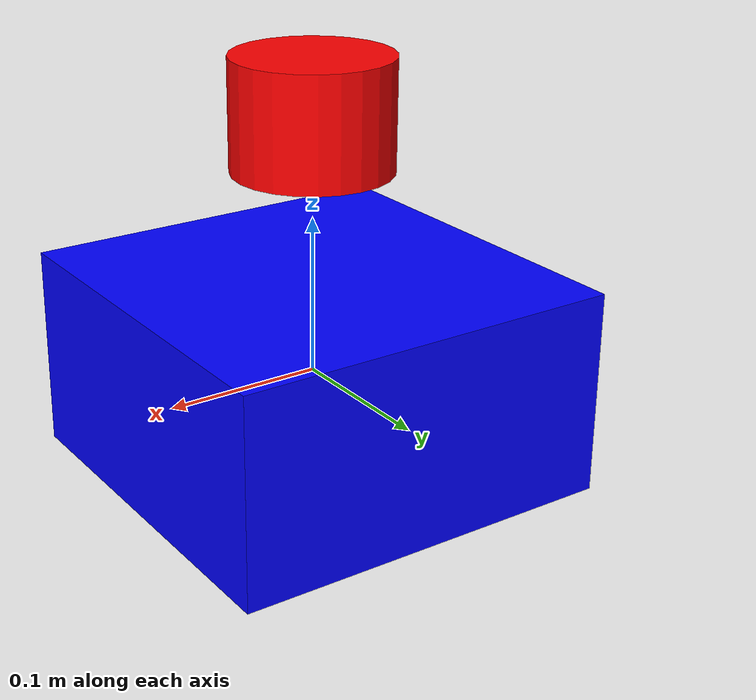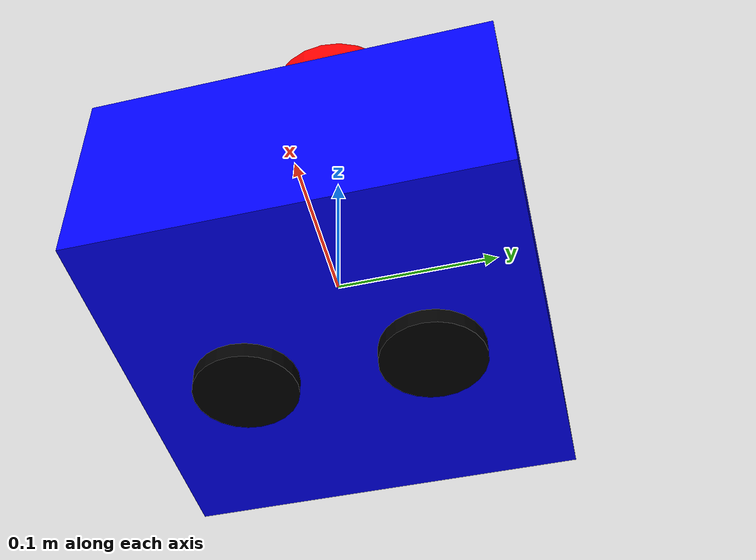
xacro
<?xml version="1.0"?>
<robot xmlns:xacro="http://www.ros.org/wiki/xacro" name="mini_mapper">

  <!-- Robot dimensions -->
  <xacro:property name="robot_length" value="0.248"/>
  <xacro:property name="robot_width" value="0.248"/>
  <xacro:property name="robot_height" value="0.130"/>
  <xacro:property name="wheel_radius" value="0.03175"/>
  <xacro:property name="wheelbase" value="0.112"/>

  <!-- Base link (robot center) -->
  <link name="base_link">
    <visual>
      <geometry>
        <box size="${robot_length} ${robot_width} ${robot_height}"/>
      </geometry>
      <material name="blue">
        <color rgba="0 0 1 1"/>
      </material>
    </visual>
    <collision>
      <geometry>
        <box size="${robot_length} ${robot_width} ${robot_height}"/>
      </geometry>
    </collision>
    <inertial>
      <mass value="2.0"/>
      <inertia ixx="0.02" ixy="0" ixz="0" iyy="0.02" iyz="0" izz="0.02"/>
    </inertial>
  </link>

  <!-- Left wheel -->
  <link name="left_wheel">
    <visual>
      <geometry>
        <cylinder radius="${wheel_radius}" length="0.02"/>
      </geometry>
      <material name="black">
        <color rgba="0 0 0 1"/>
      </material>
    </visual>
  </link>

  <!-- Right wheel -->
  <link name="right_wheel">
    <visual>
      <geometry>
        <cylinder radius="${wheel_radius}" length="0.02"/>
      </geometry>
      <material name="black">
        <color rgba="0 0 0 1"/>
      </material>
    </visual>
  </link>

  <!-- Lidar link -->
  <link name="laser">
    <visual>
      <geometry>
        <cylinder radius="0.05" length="0.07"/>
      </geometry>
      <material name="red">
        <color rgba="1 0 0 1"/>
      </material>
    </visual>
  </link>

  <!-- Joints -->
  <joint name="left_wheel_joint" type="continuous">
    <parent link="base_link"/>
    <child link="left_wheel"/>
    <origin xyz="0 ${wheelbase/2} -${robot_height/2}" rpy="0 0 0"/>
    <axis xyz="0 1 0"/>
  </joint>

  <joint name="right_wheel_joint" type="continuous">
    <parent link="base_link"/>
    <child link="right_wheel"/>
    <origin xyz="0 -${wheelbase/2} -${robot_height/2}" rpy="0 0 0"/>
    <axis xyz="0 1 0"/>
  </joint>

  <joint name="laser_joint" type="fixed">
    <parent link="base_link"/>
    <child link="laser"/>
    <origin xyz="0 0 ${robot_height/2 + 0.10}" rpy="0 0 0"/>
  </joint>

</robot>
